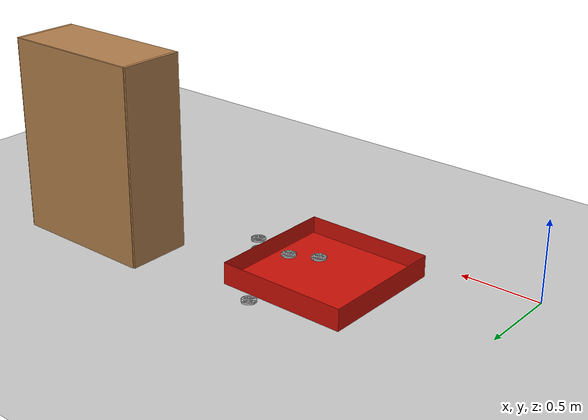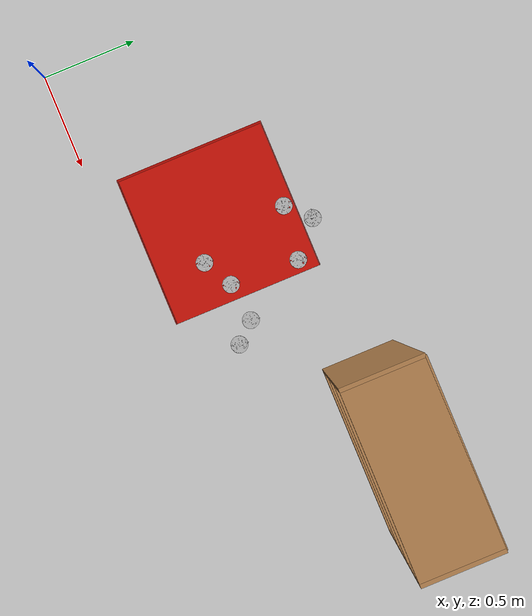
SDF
<sdf version="1.7">
 <world name="default">
  <model name="ground_plane">
   <static>1</static>
   <link name="link">
    <collision name="collision">
     <geometry><plane><normal>0 0 1</normal><size>100 100</size></plane></geometry>
     <surface>
      <contact><collide_bitmask>65535</collide_bitmask></contact>
      <friction><ode><mu>100</mu><mu2>50</mu2></ode></friction>
     </surface>
    </collision>
    <visual name="visual">
     <cast_shadows>0</cast_shadows>
     <geometry><plane><normal>0 0 1</normal><size>100 100</size></plane></geometry>
     <material>
      <script><uri>file://media/materials/scripts/gazebo.material</uri><name>Gazebo/Grey</name></script>
     </material>
    </visual>
   </link>
  </model>
  <model name="HV8_5">
   <pose>1.21309 0.400048 0.024847 0.001255 6.1e-05 0.002154</pose>
   <static>0</static>
   <link name="HV8">
    <inertial>
     <mass>0.05</mass>
     <inertia><ixx>0.0002</ixx><ixy>0</ixy><ixz>0</ixz><iyy>0.0002</iyy><iyz>0</iyz><izz>0.0002</izz></inertia>
    </inertial>
    <collision name="collishin">
     <geometry><mesh><uri>model://HV8/meshes/HV8_1.stl</uri></mesh></geometry>
    </collision>
    <visual name="visual"><geometry><mesh><uri>model://HV8/meshes/HV8_1.stl</uri></mesh></geometry></visual>
   </link>
  </model>
  <model name="HV8_19">
   <pose>1.3854 0.857102 0.024792 0.00631 -0.00236 0.002684</pose>
   <static>0</static>
   <link name="HV8">
    <inertial>
     <mass>0.05</mass>
     <inertia><ixx>0.0002</ixx><ixy>0</ixy><ixz>0</ixz><iyy>0.0002</iyy><iyz>0</iyz><izz>0.0002</izz></inertia>
    </inertial>
    <collision name="collishin">
     <geometry><mesh><uri>model://HV8/meshes/HV8_1.stl</uri></mesh></geometry>
    </collision>
    <visual name="visual"><geometry><mesh><uri>model://HV8/meshes/HV8_1.stl</uri></mesh></geometry></visual>
   </link>
  </model>
  <model name="HV8_22">
   <pose>1.09748 0.894763 0.024795 -3.9e-05 5.8e-05 0.32156</pose>
   <static>0</static>
   <link name="HV8">
    <inertial>
     <mass>0.05</mass>
     <inertia><ixx>0.0002</ixx><ixy>0</ixy><ixz>0</ixz><iyy>0.0002</iyy><iyz>0</iyz><izz>0.0002</izz></inertia>
    </inertial>
    <collision name="collishin">
     <geometry><mesh><uri>model://HV8/meshes/HV8_1.stl</uri></mesh></geometry>
    </collision>
    <visual name="visual"><geometry><mesh><uri>model://HV8/meshes/HV8_1.stl</uri></mesh></geometry></visual>
   </link>
  </model>
  <model name="HV8_23">
   <pose>1.37044 0.484187 0.02473 0.001226 -0.000859 0.003122</pose>
   <static>0</static>
   <link name="HV8">
    <inertial>
     <mass>0.05</mass>
     <inertia><ixx>0.0002</ixx><ixy>0</ixy><ixz>0</ixz><iyy>0.0002</iyy><iyz>0</iyz><izz>0.0002</izz></inertia>
    </inertial>
    <collision name="collishin">
     <geometry><mesh><uri>model://HV8/meshes/HV8_1.stl</uri></mesh></geometry>
    </collision>
    <visual name="visual"><geometry><mesh><uri>model://HV8/meshes/HV8_1.stl</uri></mesh></geometry></visual>
   </link>
  </model>
  <model name="HV8_24">
   <pose>1.67623 0.403886 3e-06 -0.000164 -2.7e-05 0.001022</pose>
   <static>0</static>
   <link name="HV8">
    <inertial>
     <mass>0.05</mass>
     <inertia><ixx>0.0002</ixx><ixy>0</ixy><ixz>0</ixz><iyy>0.0002</iyy><iyz>0</iyz><izz>0.0002</izz></inertia>
    </inertial>
    <collision name="collishin">
     <geometry><mesh><uri>model://HV8/meshes/HV8_1.stl</uri></mesh></geometry>
    </collision>
    <visual name="visual"><geometry><mesh><uri>model://HV8/meshes/HV8_1.stl</uri></mesh></geometry></visual>
   </link>
  </model>
  <model name="HV8_25">
   <pose>1.58133 0.507568 3e-06 -0.000164 -2.7e-05 0.001023</pose>
   <static>0</static>
   <link name="HV8">
    <inertial>
     <mass>0.05</mass>
     <inertia><ixx>0.0002</ixx><ixy>0</ixy><ixz>0</ixz><iyy>0.0002</iyy><iyz>0</iyz><izz>0.0002</izz></inertia>
    </inertial>
    <collision name="collishin">
     <geometry><mesh><uri>model://HV8/meshes/HV8_1.stl</uri></mesh></geometry>
    </collision>
    <visual name="visual"><geometry><mesh><uri>model://HV8/meshes/HV8_1.stl</uri></mesh></geometry></visual>
   </link>
  </model>
  <model name="HV8_31">
   <pose>1.21325 1.01063 3e-06 -0.000164 -2.7e-05 1.51586</pose>
   <static>0</static>
   <link name="HV8">
    <inertial>
     <mass>0.05</mass>
     <inertia><ixx>0.0002</ixx><ixy>0</ixy><ixz>0</ixz><iyy>0.0002</iyy><iyz>0</iyz><izz>0.0002</izz></inertia>
    </inertial>
    <collision name="collishin">
     <geometry><mesh><uri>model://HV8/meshes/HV8_1.stl</uri></mesh></geometry>
    </collision>
    <visual name="visual"><geometry><mesh><uri>model://HV8/meshes/HV8_1.stl</uri></mesh></geometry></visual>
   </link>
  </model>
  <model name="object_box_1">
   <pose>1.05292 0.547557 0 0 -0 0</pose>
   <static>1</static>
   <link name="object_box">
    <inertial>
     <mass>0.2</mass>
     <inertia><ixx>0.0005</ixx><ixy>0</ixy><ixz>0</ixz><iyy>0.0005</iyy><iyz>0</iyz><izz>0.0005</izz></inertia>
    </inertial>
    <collision name="collision">
     <geometry><mesh><uri>model://object_box/meshed/object_box_2.dae</uri></mesh></geometry>
    </collision>
    <visual name="visual">
     <geometry><mesh><uri>model://object_box/meshed/object_box_2.dae</uri></mesh></geometry>
    </visual>
   </link>
  </model>
  <model name="bookshelf">
   <static>1</static>
   <link name="link">
    <inertial><mass>1</mass></inertial>
    <collision name="back">
     <pose>0 0.005 0.6 0 -0 0</pose>
     <geometry><box><size>0.9 0.01 1.2</size></box></geometry>
    </collision>
    <visual name="visual1">
     <pose>0 0.005 0.6 0 -0 0</pose>
     <geometry><box><size>0.9 0.01 1.2</size></box></geometry>
     <material>
      <script><uri>file://media/materials/scripts/gazebo.material</uri><name>Gazebo/Wood</name></script>
     </material>
    </visual>
    <collision name="left_side">
     <pose>0.45 -0.195 0.6 0 -0 0</pose>
     <geometry><box><size>0.02 0.4 1.2</size></box></geometry>
    </collision>
    <visual name="visual2">
     <pose>0.45 -0.195 0.6 0 -0 0</pose>
     <geometry><box><size>0.02 0.4 1.2</size></box></geometry>
     <material>
      <script><uri>file://media/materials/scripts/gazebo.material</uri><name>Gazebo/Wood</name></script>
     </material>
    </visual>
    <collision name="right_side">
     <pose>-0.45 -0.195 0.6 0 -0 0</pose>
     <geometry><box><size>0.02 0.4 1.2</size></box></geometry>
    </collision>
    <visual name="visual3">
     <pose>-0.45 -0.195 0.6 0 -0 0</pose>
     <geometry><box><size>0.02 0.4 1.2</size></box></geometry>
     <material>
      <script><uri>file://media/materials/scripts/gazebo.material</uri><name>Gazebo/Wood</name></script>
     </material>
    </visual>
    <collision name="bottom">
     <pose>0 -0.195 0.03 0 -0 0</pose>
     <geometry><box><size>0.88 0.4 0.06</size></box></geometry>
    </collision>
    <visual name="visual4">
     <pose>0 -0.195 0.03 0 -0 0</pose>
     <geometry><box><size>0.88 0.4 0.06</size></box></geometry>
     <material>
      <script><uri>file://media/materials/scripts/gazebo.material</uri><name>Gazebo/Wood</name></script>
     </material>
    </visual>
    <collision name="top">
     <pose>0 -0.195 1.19 0 -0 0</pose>
     <geometry><box><size>0.88 0.4 0.02</size></box></geometry>
    </collision>
    <visual name="visual5">
     <pose>0 -0.195 1.19 0 -0 0</pose>
     <geometry><box><size>0.88 0.4 0.02</size></box></geometry>
     <material>
      <script><uri>file://media/materials/scripts/gazebo.material</uri><name>Gazebo/Wood</name></script>
     </material>
    </visual>
    <collision name="low_shelf">
     <pose>0 -0.195 0.43 0 -0 0</pose>
     <geometry><box><size>0.88 0.4 0.02</size></box></geometry>
    </collision>
    <visual name="visual6">
     <pose>0 -0.195 0.43 0 -0 0</pose>
     <geometry><box><size>0.88 0.4 0.02</size></box></geometry>
     <material>
      <script><uri>file://media/materials/scripts/gazebo.material</uri><name>Gazebo/Wood</name></script>
     </material>
    </visual>
    <collision name="high_shelf">
     <pose>0 -0.195 0.8 0 -0 0</pose>
     <geometry><box><size>0.88 0.4 0.02</size></box></geometry>
    </collision>
    <visual name="visual7">
     <pose>0 -0.195 0.8 0 -0 0</pose>
     <geometry><box><size>0.88 0.4 0.02</size></box></geometry>
     <material>
      <script><uri>file://media/materials/scripts/gazebo.material</uri><name>Gazebo/Wood</name></script>
     </material>
    </visual>
   </link>
   <pose>2.42112 1.14785 0 0 -0 0</pose>
  </model>
 </world>
</sdf>
